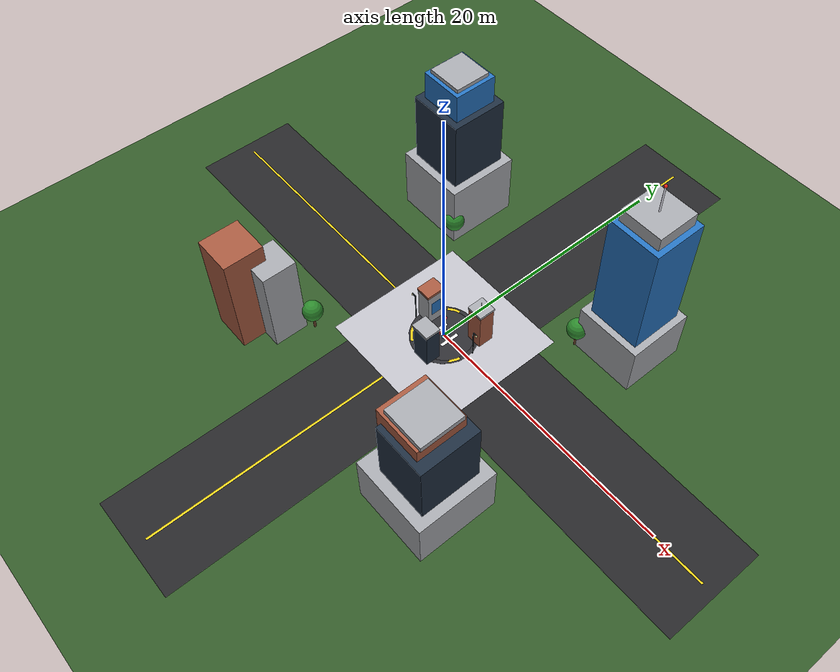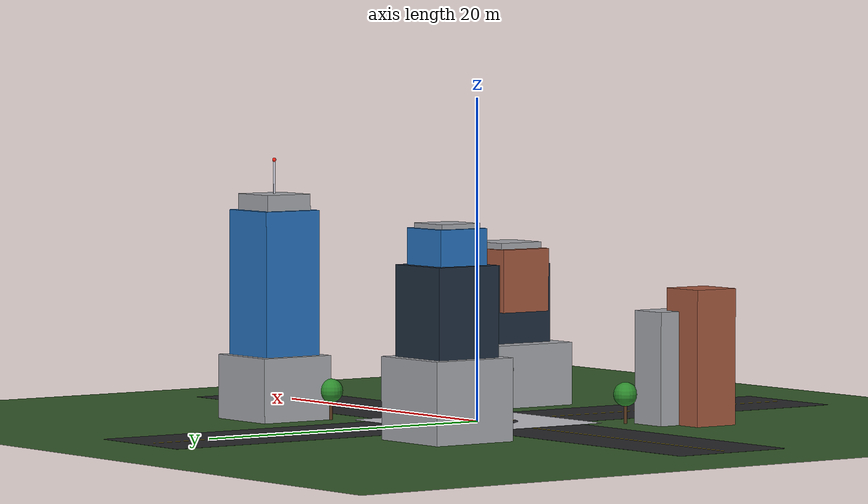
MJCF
<mujoco model="quadrotor_urban_city_world">
  <compiler angle="degree" coordinate="local" inertiafromgeom="false"/>
  <option timestep="0.002" gravity="0 0 -9.81"/>

  <visual>
    <headlight ambient="0.45 0.45 0.5" diffuse="0.75 0.75 0.75" specular="0.25 0.25 0.25"/>
    <rgba fog="0.7 0.82 0.95 1"/>
    <global azimuth="135" elevation="-25"/>
    <quality shadowsize="4096"/>
  </visual>

  <asset>
    <!-- Sky & Terrains -->
    <texture name="sky" type="skybox" builtin="gradient" rgb1="0.4 0.65 0.9" rgb2="0.8 0.88 0.98" width="512" height="512"/>
    <texture name="grass_tex" type="2d" builtin="checker" width="512" height="512" rgb1="0.22 0.38 0.18" rgb2="0.18 0.32 0.14"/>
    <material name="grass_mat" texture="grass_tex" texrepeat="50 50" reflectance="0.05" roughness="0.9"/>

    <!-- Urban City Materials -->
    <texture name="road_tex" type="2d" builtin="checker" width="512" height="512" rgb1="0.16 0.16 0.17" rgb2="0.14 0.14 0.15"/>
    <material name="road_mat" texture="road_tex" texrepeat="25 25" reflectance="0.15" roughness="0.8"/>
    <material name="sidewalk_mat" rgba="0.75 0.75 0.78 1" roughness="0.7"/>
    <material name="road_line_yellow" rgba="0.95 0.82 0.1 1"/>
    <material name="road_line_white" rgba="0.95 0.95 0.95 1"/>

    <!-- Building & Skyscraper Materials -->
    <material name="glass_blue" rgba="0.15 0.45 0.75 0.9" specular="0.9" shininess="0.9" reflectance="0.4"/>
    <material name="glass_dark" rgba="0.12 0.18 0.25 0.95" specular="0.8" shininess="0.85" reflectance="0.3"/>
    <material name="concrete_facade" rgba="0.65 0.66 0.68 1" roughness="0.6"/>
    <material name="brick_facade" rgba="0.65 0.35 0.25 1" roughness="0.8"/>
    <material name="building_spire" rgba="0.85 0.85 0.9 1" specular="1.0"/>
    <material name="beacon_red" rgba="1.0 0.15 0.1 1"/>

    <!-- Urban Foliage & Street Props -->
    <material name="tree_wood" rgba="0.35 0.22 0.12 1" roughness="0.9"/>
    <material name="tree_leaves" rgba="0.18 0.55 0.18 1" roughness="0.9"/>
    <material name="streetlamp_mat" rgba="0.2 0.25 0.28 1"/>
    <material name="lamp_glow" rgba="1.0 0.95 0.7 0.9"/>

    <!-- Central Helipad & Target Materials -->
    <material name="helipad_yellow" rgba="0.95 0.8 0.1 1" shininess="0.8"/>
    <material name="helipad_white" rgba="0.95 0.95 0.95 1"/>
    <material name="helipad_dark" rgba="0.18 0.18 0.2 1"/>
    <material name="gate_orange" rgba="1.0 0.4 0.05 1" shininess="0.9"/>
    <material name="gate_cyan" rgba="0.0 0.85 1.0 1" shininess="0.9"/>
    <material name="target_glow" rgba="1.0 0.2 0.3 0.65"/>
    <material name="pylon_stripe1" rgba="0.9 0.2 0.15 1"/>

    <!-- Drone Materials -->
    <material name="carbon_fiber" rgba="0.12 0.13 0.15 1" specular="0.6" shininess="0.8"/>
    <material name="canopy_mat" rgba="0.05 0.6 0.9 0.85" specular="1.0" shininess="0.9"/>
    <material name="arm_mat" rgba="0.2 0.2 0.22 1" specular="0.4"/>
    <material name="motor_mat" rgba="0.15 0.15 0.18 1" specular="0.8"/>
    <material name="prop_front" rgba="0.0 0.7 1.0 0.7"/>
    <material name="prop_rear" rgba="1.0 0.25 0.25 0.7"/>
    <material name="skid_mat" rgba="0.75 0.75 0.78 1"/>
  </asset>

  <worldbody>
    <!-- Ground & Sky Lighting -->
    <geom name="ground" type="plane" size="100 100 0.1" material="grass_mat"/>
    <light name="sun" directional="true" pos="25 15 40" dir="-0.4 -0.3 -1" castshadow="true" diffuse="0.9 0.88 0.85" specular="0.3 0.3 0.3"/>
    <light name="fill_light" directional="true" pos="-20 -15 25" dir="0.4 0.3 -0.8" castshadow="false" diffuse="0.35 0.4 0.45"/>

    <!-- Dynamic Mocap Target Beacon -->
    <body name="target_marker" mocap="true" pos="0 0 2">
      <geom name="target_sphere" type="sphere" size="0.12" material="target_glow" conaffinity="0" contype="0"/>
      <geom name="target_ring" type="cylinder" size="0.22 0.01" material="target_glow" conaffinity="0" contype="0"/>
    </body>

    <!-- URBAN CITY ENVIRONMENT: ROADS, STREETS & SIDEWALKS             -->
    <!-- Main Avenue North-South (Width 8m, Length 50m) -->
    <geom name="avenue_ns" type="box" pos="0 0 0.003" size="4.0 25.0 0.003" material="road_mat"/>
    <geom name="avenue_ew" type="box" pos="0 0 0.003" size="25.0 4.0 0.003" material="road_mat"/>
    <!-- Yellow Dividing Lines -->
    <geom name="line_ns" type="box" pos="0 0 0.005" size="0.08 24.0 0.002" material="road_line_yellow"/>
    <geom name="line_ew" type="box" pos="0 0 0.005" size="24.0 0.08 0.002" material="road_line_yellow"/>

    <!-- Central Helipad Plaza (Elevated Pad on Central Plaza) -->
    <geom name="plaza_pavement" type="box" pos="0 0 0.007" size="5.5 5.5 0.004" material="sidewalk_mat"/>
    <geom name="helipad_circle" type="cylinder" pos="0 0 0.012" size="2.5 0.005" material="helipad_dark"/>
    <geom name="helipad_ring" type="cylinder" pos="0 0 0.014" size="2.4 0.003" material="helipad_yellow"/>
    <geom name="helipad_inner" type="cylinder" pos="0 0 0.016" size="2.2 0.003" material="helipad_dark"/>
    <!-- Helipad 'H' Marking -->
    <geom name="h_bar_left" type="box" pos="-0.6 0 0.018" size="0.12 0.75 0.002" material="helipad_white"/>
    <geom name="h_bar_right" type="box" pos="0.6 0 0.018" size="0.12 0.75 0.002" material="helipad_white"/>
    <geom name="h_bar_center" type="box" pos="0 0 0.018" size="0.48 0.12 0.002" material="helipad_white"/>

    <!-- SKYSCRAPERS & URBAN BUILDING BLOCKS                           -->
    <!-- Building Block 1: Metropolitan Glass Skyscraper (North-East, 13m tall) -->
    <body name="skyscraper_metro" pos="9 9 0">
      <geom name="metro_base" type="box" pos="0 0 2.0" size="2.5 2.5 2.0" material="concrete_facade"/>
      <geom name="metro_tower" type="box" pos="0 0 7.5" size="2.0 2.0 5.5" material="glass_blue"/>
      <geom name="metro_crown" type="box" pos="0 0 13.5" size="1.6 1.6 0.5" material="concrete_facade"/>
      <geom name="metro_spire" type="cylinder" pos="0 0 15.0" size="0.06 1.0" material="building_spire"/>
      <geom name="metro_beacon" type="sphere" pos="0 0 16.1" size="0.12" material="beacon_red"/>
    </body>

    <!-- Building Block 2: Financial Center Tower (North-West, 11m tall) -->
    <body name="skyscraper_finance" pos="-9 9 0">
      <geom name="fin_base" type="box" pos="0 0 2.5" size="2.8 2.8 2.5" material="concrete_facade"/>
      <geom name="fin_mid" type="box" pos="0 0 6.5" size="2.2 2.2 4.0" material="glass_dark"/>
      <geom name="fin_top" type="box" pos="0 0 11.2" size="1.7 1.7 1.5" material="glass_blue"/>
      <geom name="fin_roof" type="box" pos="0 0 12.85" size="1.4 1.4 0.15" material="concrete_facade"/>
    </body>

    <!-- Building Block 3: Tech Innovation Complex (South-East, 10m tall) -->
    <body name="building_tech" pos="9 -9 0">
      <geom name="tech_podium" type="box" pos="0 0 2.0" size="3.0 3.0 2.0" material="concrete_facade"/>
      <geom name="tech_block1" type="box" pos="0.3 0 5.5" size="2.0 2.2 3.5" material="glass_dark"/>
      <geom name="tech_block2" type="box" pos="-0.3 0 8.0" size="1.8 1.8 2.0" material="brick_facade"/>
      <geom name="tech_roof" type="box" pos="0 0 10.2" size="1.6 1.6 0.2" material="concrete_facade"/>
    </body>

    <!-- Building Block 4: Residential Plaza Towers (South-West, 8.5m tall) -->
    <body name="building_residential" pos="-9 -9 0">
      <geom name="res_tower1" type="box" pos="-0.8 -0.8 4.2" size="1.5 1.5 4.2" material="brick_facade"/>
      <geom name="res_tower2" type="box" pos="0.8 0.8 3.5" size="1.3 1.3 3.5" material="concrete_facade"/>
      <geom name="res_connector" type="box" pos="0 0 3.5" size="0.6 0.6 0.8" material="glass_blue"/>
    </body>

    <!-- Corridor Urban Building Block A (Front-Left Obstacle: x=1.8, y=1.8, h=3.2m) -->
    <body name="city_block_obstacle_ne" pos="1.8 1.8 0">
      <geom name="block_ne_bldg" type="box" pos="0 0 1.6" size="0.6 0.6 1.6" material="brick_facade"/>
      <geom name="block_ne_roof" type="box" pos="0 0 3.3" size="0.65 0.65 0.1" material="concrete_facade"/>
      <geom name="block_ne_antenna" type="cylinder" pos="0 0 3.7" size="0.03 0.3" material="building_spire"/>
    </body>

    <!-- Corridor Urban Building Block B (West Flank Obstacle: x=-2.0, y=0.5, h=2.8m) -->
    <body name="city_block_obstacle_w" pos="-2.0 0.5 0">
      <geom name="block_w_bldg" type="box" pos="0 0 1.4" size="0.55 0.7 1.4" material="concrete_facade"/>
      <geom name="block_w_glass" type="box" pos="0 0 1.4" size="0.57 0.4 0.6" material="glass_blue"/>
      <geom name="block_w_roof" type="box" pos="0 0 2.9" size="0.6 0.75 0.1" material="brick_facade"/>
    </body>

    <!-- Corridor Urban Building Block C (South Flank Obstacle: x=0.5, y=-2.0, h=3.0m) -->
    <body name="city_block_obstacle_s" pos="0.5 -2.0 0">
      <geom name="block_s_bldg" type="box" pos="0 0 1.5" size="0.7 0.55 1.5" material="glass_dark"/>
      <geom name="block_s_roof" type="box" pos="0 0 3.1" size="0.75 0.6 0.1" material="concrete_facade"/>
    </body>

    <!-- Legacy flight obstacle alias for backward compatibility -->
    <geom name="flight_obstacle" type="cylinder" pos="1.8 1.8 0.01" size="0.01 0.01" material="pylon_stripe1" conaffinity="0" contype="0"/>

    <!-- URBAN STREET PROPS: TREES & STREETLAMPS                       -->
    <!-- City Trees in Perimeter Parks (away from camera sightline) -->
    <body name="tree_1" pos="6.5 6.5 0">
      <geom name="tree1_trunk" type="cylinder" pos="0 0 0.7" size="0.1 0.7" material="tree_wood"/>
      <geom name="tree1_crown" type="sphere" pos="0 0 1.8" size="0.75" material="tree_leaves"/>
    </body>
    <body name="tree_2" pos="-6.5 6.5 0">
      <geom name="tree2_trunk" type="cylinder" pos="0 0 0.7" size="0.1 0.7" material="tree_wood"/>
      <geom name="tree2_crown" type="sphere" pos="0 0 1.8" size="0.75" material="tree_leaves"/>
    </body>
    <body name="tree_3" pos="-6.5 -6.5 0">
      <geom name="tree3_trunk" type="cylinder" pos="0 0 0.7" size="0.1 0.7" material="tree_wood"/>
      <geom name="tree3_crown" type="sphere" pos="0 0 1.8" size="0.75" material="tree_leaves"/>
    </body>
    <body name="tree_4" pos="6.5 -6.5 0">
      <geom name="tree4_trunk" type="cylinder" pos="0 0 0.7" size="0.1 0.7" material="tree_wood"/>
      <geom name="tree4_crown" type="sphere" pos="0 0 1.8" size="0.75" material="tree_leaves"/>
    </body>

    <!-- Streetlamps -->
    <body name="lamp_ne" pos="2.5 0.5 0">
      <geom name="lamp_pole_ne" type="cylinder" pos="0 0 1.2" size="0.04 1.2" material="streetlamp_mat"/>
      <geom name="lamp_arm_ne" type="box" pos="0.15 0 2.4" size="0.18 0.03 0.03" material="streetlamp_mat"/>
      <geom name="lamp_head_ne" type="sphere" pos="0.3 0 2.35" size="0.08" material="lamp_glow"/>
    </body>
    <body name="lamp_sw" pos="-2.5 -0.5 0">
      <geom name="lamp_pole_sw" type="cylinder" pos="0 0 1.2" size="0.04 1.2" material="streetlamp_mat"/>
      <geom name="lamp_arm_sw" type="box" pos="-0.15 0 2.4" size="0.18 0.03 0.03" material="streetlamp_mat"/>
      <geom name="lamp_head_sw" type="sphere" pos="-0.3 0 2.35" size="0.08" material="lamp_glow"/>
    </body>

    <!-- QUADROTOR VEHICLE WITH 360-DEGREE MULTI-BEAM LIDAR SENSORS    -->
    <body name="quadrotor" pos="0 0 0.15">
      <freejoint name="root"/>
      <inertial pos="0 0 0" mass="1.5" fullinertia="0.03 0.03 0.05 0 0 0"/>

      <!-- Tracking Site -->
      <site name="center_site" pos="0 0 0" size="0.01"/>

      <!-- 8-Direction Horizontal 360-degree LiDAR Proximity Sensor Sites -->
      <site name="rf_fwd" pos="0.14 0 0" zaxis="1 0 0" size="0.008"/>
      <site name="rf_fwd_left" pos="0.10 0.10 0" zaxis="0.7071 0.7071 0" size="0.008"/>
      <site name="rf_left" pos="0 0.14 0" zaxis="0 1 0" size="0.008"/>
      <site name="rf_back_left" pos="-0.10 0.10 0" zaxis="-0.7071 0.7071 0" size="0.008"/>
      <site name="rf_back" pos="-0.14 0 0" zaxis="-1 0 0" size="0.008"/>
      <site name="rf_back_right" pos="-0.10 -0.10 0" zaxis="-0.7071 -0.7071 0" size="0.008"/>
      <site name="rf_right" pos="0 -0.14 0" zaxis="0 -1 0" size="0.008"/>
      <site name="rf_fwd_right" pos="0.10 -0.10 0" zaxis="0.7071 -0.7071 0" size="0.008"/>
      <!-- Vertical Clearance Sensor Sites -->
      <site name="rf_up" pos="0 0 0.08" zaxis="0 0 1" size="0.008"/>
      <site name="rf_down" pos="0 0 -0.08" zaxis="0 0 -1" size="0.008"/>

      <!-- Fuselage Core Body -->
      <geom name="fuselage" type="box" pos="0 0 0" size="0.12 0.10 0.035" material="carbon_fiber"/>
      <geom name="canopy" type="ellipsoid" pos="0.01 0 0.035" size="0.09 0.07 0.035" material="canopy_mat"/>

      <!-- Forward Camera Pod & LiDAR Dome -->
      <geom name="nose_camera" type="cylinder" pos="0.13 0 0.01" zaxis="1 0 0" size="0.022 0.02" material="motor_mat"/>
      <geom name="lens" type="sphere" pos="0.152 0 0.01" size="0.016" material="canopy_mat"/>
      <geom name="lidar_turret" type="cylinder" pos="0 0 0.065" size="0.025 0.012" material="carbon_fiber"/>

      <!-- Landing Skids -->
      <geom name="skid_leg_fl" type="cylinder" pos="0.08 0.09 -0.05" zaxis="0 0.3 -1" size="0.007 0.06" material="skid_mat"/>
      <geom name="skid_leg_rl" type="cylinder" pos="-0.08 0.09 -0.05" zaxis="0 0.3 -1" size="0.007 0.06" material="skid_mat"/>
      <geom name="skid_rail_l" type="capsule" pos="0 0.11 -0.095" zaxis="1 0 0" size="0.008 0.14" material="skid_mat"/>
      <geom name="skid_leg_fr" type="cylinder" pos="0.08 -0.09 -0.05" zaxis="0 -0.3 -1" size="0.007 0.06" material="skid_mat"/>
      <geom name="skid_leg_rr" type="cylinder" pos="-0.08 -0.09 -0.05" zaxis="0 -0.3 -1" size="0.007 0.06" material="skid_mat"/>
      <geom name="skid_rail_r" type="capsule" pos="0 -0.11 -0.095" zaxis="1 0 0" size="0.008 0.14" material="skid_mat"/>

      <!-- Arm 1: Front-Right (+X, -Y) -->
      <geom name="arm1" type="box" pos="0.12 -0.12 0" euler="0 0 -45" size="0.14 0.016 0.012" material="arm_mat"/>
      <geom name="motor1" type="cylinder" pos="0.22 -0.22 0.025" size="0.032 0.022" material="motor_mat"/>
      <geom name="rotor1" type="cylinder" pos="0.22 -0.22 0.05" size="0.14 0.003" material="prop_front"/>

      <!-- Arm 2: Front-Left (+X, +Y) -->
      <geom name="arm2" type="box" pos="0.12 0.12 0" euler="0 0 45" size="0.14 0.016 0.012" material="arm_mat"/>
      <geom name="motor2" type="cylinder" pos="0.22 0.22 0.025" size="0.032 0.022" material="motor_mat"/>
      <geom name="rotor2" type="cylinder" pos="0.22 0.22 0.05" size="0.14 0.003" material="prop_front"/>

      <!-- Arm 3: Rear-Left (-X, +Y) -->
      <geom name="arm3" type="box" pos="-0.12 0.12 0" euler="0 0 -45" size="0.14 0.016 0.012" material="arm_mat"/>
      <geom name="motor3" type="cylinder" pos="-0.22 0.22 0.025" size="0.032 0.022" material="motor_mat"/>
      <geom name="rotor3" type="cylinder" pos="-0.22 0.22 0.05" size="0.14 0.003" material="prop_rear"/>

      <!-- Arm 4: Rear-Right (-X, -Y) -->
      <geom name="arm4" type="box" pos="-0.12 -0.12 0" euler="0 0 45" size="0.14 0.016 0.012" material="arm_mat"/>
      <geom name="motor4" type="cylinder" pos="-0.22 -0.22 0.025" size="0.032 0.022" material="motor_mat"/>
      <geom name="rotor4" type="cylinder" pos="-0.22 -0.22 0.05" size="0.14 0.003" material="prop_rear"/>
    </body>
  </worldbody>

  <sensor>
    <!-- Hardware-simulated 10-beam LiDAR Proximity Rangefinders -->
    <rangefinder name="rf_fwd" site="rf_fwd"/>
    <rangefinder name="rf_fwd_left" site="rf_fwd_left"/>
    <rangefinder name="rf_left" site="rf_left"/>
    <rangefinder name="rf_back_left" site="rf_back_left"/>
    <rangefinder name="rf_back" site="rf_back"/>
    <rangefinder name="rf_back_right" site="rf_back_right"/>
    <rangefinder name="rf_right" site="rf_right"/>
    <rangefinder name="rf_fwd_right" site="rf_fwd_right"/>
    <rangefinder name="rf_up" site="rf_up"/>
    <rangefinder name="rf_down" site="rf_down"/>
  </sensor>

  <actuator>
    <!-- Direct Force & Torque Actuators on center site -->
    <motor name="thrust" site="center_site" gear="0 0 1 0 0 0"/>
    <general name="torque_x" site="center_site" gear="0 0 0 1 0 0"/>
    <general name="torque_y" site="center_site" gear="0 0 0 0 1 0"/>
    <general name="torque_z" site="center_site" gear="0 0 0 0 0 1"/>
  </actuator>
</mujoco>
